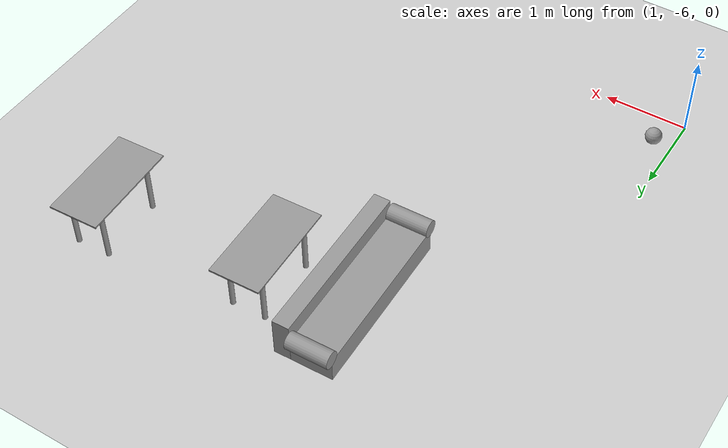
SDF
<sdf version="1.6">
 <world name="default">
  <model name="ground_plane">
   <static>1</static>
   <link name="link">
    <collision name="collision">
     <geometry><plane><normal>0 0 1</normal><size>100 100</size></plane></geometry>
     <surface>
      <contact><collide_bitmask>65535</collide_bitmask></contact>
      <friction><ode><mu>100</mu><mu2>50</mu2></ode></friction>
     </surface>
    </collision>
    <visual name="visual">
     <cast_shadows>0</cast_shadows>
     <geometry><plane><normal>0 0 1</normal><size>100 100</size></plane></geometry>
     <material>
      <script><uri>file://media/materials/scripts/gazebo.material</uri><name>Gazebo/Grey</name></script>
     </material>
    </visual>
   </link>
  </model>
  <model name="couch">
   <link name="link_2">
    <pose>0 -0.0875 -0.115 0 -0 0</pose>
    <inertial>
     <mass>1</mass>
     <inertia>
      <ixx>0.166667</ixx>
      <ixy>0</ixy>
      <ixz>0</ixz>
      <iyy>0.166667</iyy>
      <iyz>0</iyz>
      <izz>0.166667</izz>
     </inertia>
    </inertial>
    <visual name="visual">
     <geometry><box><size>2 0.5 0.3</size></box></geometry>
     <material>
      <lighting>1</lighting>
      <script><uri>file://media/materials/scripts/gazebo.material</uri><name>Gazebo/Grey</name></script>
      <shader type="pixel"><normal_map>__default__</normal_map></shader>
      <ambient>0.3 0.3 0.3 1</ambient>
      <diffuse>0.7 0.7 0.7 1</diffuse>
      <specular>0.01 0.01 0.01 1</specular>
      <emissive>0 0 0 1</emissive>
     </material>
    </visual>
    <collision name="collision">
     <geometry><box><size>2 0.5 0.3</size></box></geometry>
     <surface>
      <friction>
       <ode><mu>1</mu><mu2>1</mu2><fdir1>0 0 0</fdir1><slip1>0</slip1><slip2>0</slip2></ode>
       <torsional>
        <coefficient>1</coefficient>
        <patch_radius>0</patch_radius>
        <surface_radius>0</surface_radius>
        <use_patch_radius>1</use_patch_radius>
        <ode><slip>0</slip></ode>
       </torsional>
      </friction>
      <bounce><restitution_coefficient>0</restitution_coefficient><threshold>1e+06</threshold></bounce>
      <contact>
       <collide_without_contact>0</collide_without_contact>
       <collide_without_contact_bitmask>1</collide_without_contact_bitmask>
       <collide_bitmask>1</collide_bitmask>
       <ode>
        <soft_cfm>0</soft_cfm>
        <soft_erp>0.2</soft_erp>
        <kp>1e+13</kp>
        <kd>1</kd>
        <max_vel>0.01</max_vel>
        <min_depth>0</min_depth>
       </ode>
       <bullet>
        <split_impulse>1</split_impulse>
        <split_impulse_penetration_threshold>-0.01</split_impulse_penetration_threshold>
        <soft_cfm>0</soft_cfm>
        <soft_erp>0.2</soft_erp>
        <kp>1e+13</kp>
        <kd>1</kd>
       </bullet>
      </contact>
     </surface>
    </collision>
   </link>
   <link name="link_3">
    <pose>0 0.2625 -0.015 0 -0 0</pose>
    <inertial>
     <mass>1</mass>
     <inertia>
      <ixx>0.166667</ixx>
      <ixy>0</ixy>
      <ixz>0</ixz>
      <iyy>0.166667</iyy>
      <iyz>0</iyz>
      <izz>0.166667</izz>
     </inertia>
    </inertial>
    <visual name="visual">
     <geometry><box><size>2 0.2 0.5</size></box></geometry>
     <material>
      <lighting>1</lighting>
      <script><uri>file://media/materials/scripts/gazebo.material</uri><name>Gazebo/Grey</name></script>
      <shader type="pixel"><normal_map>__default__</normal_map></shader>
      <ambient>0.3 0.3 0.3 1</ambient>
      <diffuse>0.7 0.7 0.7 1</diffuse>
      <specular>0.01 0.01 0.01 1</specular>
      <emissive>0 0 0 1</emissive>
     </material>
    </visual>
    <collision name="collision">
     <geometry><box><size>2 0.2 0.5</size></box></geometry>
     <surface>
      <friction>
       <ode><mu>1</mu><mu2>1</mu2><fdir1>0 0 0</fdir1><slip1>0</slip1><slip2>0</slip2></ode>
       <torsional>
        <coefficient>1</coefficient>
        <patch_radius>0</patch_radius>
        <surface_radius>0</surface_radius>
        <use_patch_radius>1</use_patch_radius>
        <ode><slip>0</slip></ode>
       </torsional>
      </friction>
      <bounce><restitution_coefficient>0</restitution_coefficient><threshold>1e+06</threshold></bounce>
      <contact>
       <collide_without_contact>0</collide_without_contact>
       <collide_without_contact_bitmask>1</collide_without_contact_bitmask>
       <collide_bitmask>1</collide_bitmask>
       <ode>
        <soft_cfm>0</soft_cfm>
        <soft_erp>0.2</soft_erp>
        <kp>1e+13</kp>
        <kd>1</kd>
        <max_vel>0.01</max_vel>
        <min_depth>0</min_depth>
       </ode>
       <bullet>
        <split_impulse>1</split_impulse>
        <split_impulse_penetration_threshold>-0.01</split_impulse_penetration_threshold>
        <soft_cfm>0</soft_cfm>
        <soft_erp>0.2</soft_erp>
        <kp>1e+13</kp>
        <kd>1</kd>
       </bullet>
      </contact>
     </surface>
    </collision>
   </link>
   <link name="link_4">
    <pose>1 -0.0875 0.065 1.5707 -0 0</pose>
    <inertial>
     <mass>1</mass>
     <inertia><ixx>0.145833</ixx><ixy>0</ixy><ixz>0</ixz><iyy>0.145833</iyy><iyz>0</iyz><izz>0.125</izz></inertia>
    </inertial>
    <visual name="visual">
     <geometry><cylinder><radius>0.1</radius><length>0.5</length></cylinder></geometry>
     <material>
      <lighting>1</lighting>
      <script><uri>file://media/materials/scripts/gazebo.material</uri><name>Gazebo/Grey</name></script>
      <shader type="pixel"><normal_map>__default__</normal_map></shader>
      <ambient>0.3 0.3 0.3 1</ambient>
      <diffuse>0.7 0.7 0.7 1</diffuse>
      <specular>0.01 0.01 0.01 1</specular>
      <emissive>0 0 0 1</emissive>
     </material>
    </visual>
    <collision name="collision">
     <geometry><cylinder><radius>0.1</radius><length>0.5</length></cylinder></geometry>
     <surface>
      <friction>
       <ode><mu>1</mu><mu2>1</mu2><fdir1>0 0 0</fdir1><slip1>0</slip1><slip2>0</slip2></ode>
       <torsional>
        <coefficient>1</coefficient>
        <patch_radius>0</patch_radius>
        <surface_radius>0</surface_radius>
        <use_patch_radius>1</use_patch_radius>
        <ode><slip>0</slip></ode>
       </torsional>
      </friction>
      <bounce><restitution_coefficient>0</restitution_coefficient><threshold>1e+06</threshold></bounce>
      <contact>
       <collide_without_contact>0</collide_without_contact>
       <collide_without_contact_bitmask>1</collide_without_contact_bitmask>
       <collide_bitmask>1</collide_bitmask>
       <ode>
        <soft_cfm>0</soft_cfm>
        <soft_erp>0.2</soft_erp>
        <kp>1e+13</kp>
        <kd>1</kd>
        <max_vel>0.01</max_vel>
        <min_depth>0</min_depth>
       </ode>
       <bullet>
        <split_impulse>1</split_impulse>
        <split_impulse_penetration_threshold>-0.01</split_impulse_penetration_threshold>
        <soft_cfm>0</soft_cfm>
        <soft_erp>0.2</soft_erp>
        <kp>1e+13</kp>
        <kd>1</kd>
       </bullet>
      </contact>
     </surface>
    </collision>
   </link>
   <link name="link_4_clone">
    <pose>-1 -0.0875 0.065 1.5707 -0 0</pose>
    <inertial>
     <mass>1</mass>
     <inertia><ixx>0.145833</ixx><ixy>0</ixy><ixz>0</ixz><iyy>0.145833</iyy><iyz>0</iyz><izz>0.125</izz></inertia>
    </inertial>
    <visual name="visual">
     <geometry><cylinder><radius>0.1</radius><length>0.5</length></cylinder></geometry>
     <material>
      <lighting>1</lighting>
      <script><uri>file://media/materials/scripts/gazebo.material</uri><name>Gazebo/Grey</name></script>
      <shader type="pixel"><normal_map>__default__</normal_map></shader>
      <ambient>0.3 0.3 0.3 1</ambient>
      <diffuse>0.7 0.7 0.7 1</diffuse>
      <specular>0.01 0.01 0.01 1</specular>
      <emissive>0 0 0 1</emissive>
     </material>
    </visual>
    <collision name="collision">
     <geometry><cylinder><radius>0.1</radius><length>0.5</length></cylinder></geometry>
     <surface>
      <friction>
       <ode><mu>1</mu><mu2>1</mu2><fdir1>0 0 0</fdir1><slip1>0</slip1><slip2>0</slip2></ode>
       <torsional>
        <coefficient>1</coefficient>
        <patch_radius>0</patch_radius>
        <surface_radius>0</surface_radius>
        <use_patch_radius>1</use_patch_radius>
        <ode><slip>0</slip></ode>
       </torsional>
      </friction>
      <bounce><restitution_coefficient>0</restitution_coefficient><threshold>1e+06</threshold></bounce>
      <contact>
       <collide_without_contact>0</collide_without_contact>
       <collide_without_contact_bitmask>1</collide_without_contact_bitmask>
       <collide_bitmask>1</collide_bitmask>
       <ode>
        <soft_cfm>0</soft_cfm>
        <soft_erp>0.2</soft_erp>
        <kp>1e+13</kp>
        <kd>1</kd>
        <max_vel>0.01</max_vel>
        <min_depth>0</min_depth>
       </ode>
       <bullet>
        <split_impulse>1</split_impulse>
        <split_impulse_penetration_threshold>-0.01</split_impulse_penetration_threshold>
        <soft_cfm>0</soft_cfm>
        <soft_erp>0.2</soft_erp>
        <kp>1e+13</kp>
        <kd>1</kd>
       </bullet>
      </contact>
     </surface>
    </collision>
   </link>
   <joint name="link_2_JOINT_4" type="fixed">
    <parent>link_2</parent>
    <child>link_4_clone</child>
    <physics>
     <ode><limit><cfm>0</cfm><erp>0.2</erp></limit><suspension><cfm>0</cfm><erp>0.2</erp></suspension></ode>
    </physics>
   </joint>
   <joint name="link_2_JOINT_6" type="fixed">
    <parent>link_2</parent>
    <child>link_3</child>
    <physics>
     <ode><limit><cfm>0</cfm><erp>0.2</erp></limit><suspension><cfm>0</cfm><erp>0.2</erp></suspension></ode>
    </physics>
   </joint>
   <joint name="link_2_JOINT_7" type="fixed">
    <parent>link_2</parent>
    <child>link_4</child>
    <physics>
     <ode><limit><cfm>0</cfm><erp>0.2</erp></limit><suspension><cfm>0</cfm><erp>0.2</erp></suspension></ode>
    </physics>
   </joint>
   <static>0</static>
   <pose>2.90486 -1.80166 0.265 1e-06 0 -1.54634</pose>
  </model>
  <model name="desk_0">
   <link name="link_0">
    <pose>-0.4 -0.2 -0.068 0 -0 0</pose>
    <inertial>
     <mass>1</mass>
     <inertia><ixx>0.145833</ixx><ixy>0</ixy><ixz>0</ixz><iyy>0.145833</iyy><iyz>0</iyz><izz>0.125</izz></inertia>
    </inertial>
    <visual name="visual">
     <geometry><cylinder><radius>0.03</radius><length>0.67</length></cylinder></geometry>
     <material>
      <lighting>1</lighting>
      <script><uri>file://media/materials/scripts/gazebo.material</uri><name>Gazebo/Grey</name></script>
      <shader type="pixel"><normal_map>__default__</normal_map></shader>
      <ambient>0.3 0.3 0.3 1</ambient>
      <diffuse>0.7 0.7 0.7 1</diffuse>
      <specular>0.01 0.01 0.01 1</specular>
      <emissive>0 0 0 1</emissive>
     </material>
    </visual>
    <collision name="collision">
     <geometry><cylinder><radius>0.03</radius><length>0.67</length></cylinder></geometry>
     <surface>
      <friction>
       <ode><mu>1</mu><mu2>1</mu2><fdir1>0 0 0</fdir1><slip1>0</slip1><slip2>0</slip2></ode>
       <torsional>
        <coefficient>1</coefficient>
        <patch_radius>0</patch_radius>
        <surface_radius>0</surface_radius>
        <use_patch_radius>1</use_patch_radius>
        <ode><slip>0</slip></ode>
       </torsional>
      </friction>
      <bounce><restitution_coefficient>0</restitution_coefficient><threshold>1e+06</threshold></bounce>
      <contact>
       <collide_without_contact>0</collide_without_contact>
       <collide_without_contact_bitmask>1</collide_without_contact_bitmask>
       <collide_bitmask>1</collide_bitmask>
       <ode>
        <soft_cfm>0</soft_cfm>
        <soft_erp>0.2</soft_erp>
        <kp>1e+13</kp>
        <kd>1</kd>
        <max_vel>0.01</max_vel>
        <min_depth>0</min_depth>
       </ode>
       <bullet>
        <split_impulse>1</split_impulse>
        <split_impulse_penetration_threshold>-0.01</split_impulse_penetration_threshold>
        <soft_cfm>0</soft_cfm>
        <soft_erp>0.2</soft_erp>
        <kp>1e+13</kp>
        <kd>1</kd>
       </bullet>
      </contact>
     </surface>
    </collision>
   </link>
   <link name="link_0_clone">
    <pose>-0.4 0.2 -0.068 0 -0 0</pose>
    <inertial>
     <mass>1</mass>
     <inertia><ixx>0.145833</ixx><ixy>0</ixy><ixz>0</ixz><iyy>0.145833</iyy><iyz>0</iyz><izz>0.125</izz></inertia>
    </inertial>
    <visual name="visual">
     <geometry><cylinder><radius>0.03</radius><length>0.67</length></cylinder></geometry>
     <material>
      <lighting>1</lighting>
      <script><uri>file://media/materials/scripts/gazebo.material</uri><name>Gazebo/Grey</name></script>
      <shader type="pixel"><normal_map>__default__</normal_map></shader>
      <ambient>0.3 0.3 0.3 1</ambient>
      <diffuse>0.7 0.7 0.7 1</diffuse>
      <specular>0.01 0.01 0.01 1</specular>
      <emissive>0 0 0 1</emissive>
     </material>
    </visual>
    <collision name="collision">
     <geometry><cylinder><radius>0.03</radius><length>0.67</length></cylinder></geometry>
     <surface>
      <friction>
       <ode><mu>1</mu><mu2>1</mu2><fdir1>0 0 0</fdir1><slip1>0</slip1><slip2>0</slip2></ode>
       <torsional>
        <coefficient>1</coefficient>
        <patch_radius>0</patch_radius>
        <surface_radius>0</surface_radius>
        <use_patch_radius>1</use_patch_radius>
        <ode><slip>0</slip></ode>
       </torsional>
      </friction>
      <bounce><restitution_coefficient>0</restitution_coefficient><threshold>1e+06</threshold></bounce>
      <contact>
       <collide_without_contact>0</collide_without_contact>
       <collide_without_contact_bitmask>1</collide_without_contact_bitmask>
       <collide_bitmask>1</collide_bitmask>
       <ode>
        <soft_cfm>0</soft_cfm>
        <soft_erp>0.2</soft_erp>
        <kp>1e+13</kp>
        <kd>1</kd>
        <max_vel>0.01</max_vel>
        <min_depth>0</min_depth>
       </ode>
       <bullet>
        <split_impulse>1</split_impulse>
        <split_impulse_penetration_threshold>-0.01</split_impulse_penetration_threshold>
        <soft_cfm>0</soft_cfm>
        <soft_erp>0.2</soft_erp>
        <kp>1e+13</kp>
        <kd>1</kd>
       </bullet>
      </contact>
     </surface>
    </collision>
   </link>
   <link name="link_0_clone_0">
    <pose>0.4 0.2 -0.068 0 -0 0</pose>
    <inertial>
     <mass>1</mass>
     <inertia><ixx>0.145833</ixx><ixy>0</ixy><ixz>0</ixz><iyy>0.145833</iyy><iyz>0</iyz><izz>0.125</izz></inertia>
    </inertial>
    <visual name="visual">
     <geometry><cylinder><radius>0.03</radius><length>0.67</length></cylinder></geometry>
     <material>
      <lighting>1</lighting>
      <script><uri>file://media/materials/scripts/gazebo.material</uri><name>Gazebo/Grey</name></script>
      <shader type="pixel"><normal_map>__default__</normal_map></shader>
      <ambient>0.3 0.3 0.3 1</ambient>
      <diffuse>0.7 0.7 0.7 1</diffuse>
      <specular>0.01 0.01 0.01 1</specular>
      <emissive>0 0 0 1</emissive>
     </material>
    </visual>
    <collision name="collision">
     <geometry><cylinder><radius>0.03</radius><length>0.67</length></cylinder></geometry>
     <surface>
      <friction>
       <ode><mu>1</mu><mu2>1</mu2><fdir1>0 0 0</fdir1><slip1>0</slip1><slip2>0</slip2></ode>
       <torsional>
        <coefficient>1</coefficient>
        <patch_radius>0</patch_radius>
        <surface_radius>0</surface_radius>
        <use_patch_radius>1</use_patch_radius>
        <ode><slip>0</slip></ode>
       </torsional>
      </friction>
      <bounce><restitution_coefficient>0</restitution_coefficient><threshold>1e+06</threshold></bounce>
      <contact>
       <collide_without_contact>0</collide_without_contact>
       <collide_without_contact_bitmask>1</collide_without_contact_bitmask>
       <collide_bitmask>1</collide_bitmask>
       <ode>
        <soft_cfm>0</soft_cfm>
        <soft_erp>0.2</soft_erp>
        <kp>1e+13</kp>
        <kd>1</kd>
        <max_vel>0.01</max_vel>
        <min_depth>0</min_depth>
       </ode>
       <bullet>
        <split_impulse>1</split_impulse>
        <split_impulse_penetration_threshold>-0.01</split_impulse_penetration_threshold>
        <soft_cfm>0</soft_cfm>
        <soft_erp>0.2</soft_erp>
        <kp>1e+13</kp>
        <kd>1</kd>
       </bullet>
      </contact>
     </surface>
    </collision>
   </link>
   <link name="link_0_clone_1">
    <pose>0.4 -0.2 -0.068 0 -0 0</pose>
    <inertial>
     <mass>1</mass>
     <inertia><ixx>0.145833</ixx><ixy>0</ixy><ixz>0</ixz><iyy>0.145833</iyy><iyz>0</iyz><izz>0.125</izz></inertia>
    </inertial>
    <visual name="visual">
     <geometry><cylinder><radius>0.03</radius><length>0.67</length></cylinder></geometry>
     <material>
      <lighting>1</lighting>
      <script><uri>file://media/materials/scripts/gazebo.material</uri><name>Gazebo/Grey</name></script>
      <shader type="pixel"><normal_map>__default__</normal_map></shader>
      <ambient>0.3 0.3 0.3 1</ambient>
      <diffuse>0.7 0.7 0.7 1</diffuse>
      <specular>0.01 0.01 0.01 1</specular>
      <emissive>0 0 0 1</emissive>
     </material>
    </visual>
    <collision name="collision">
     <geometry><cylinder><radius>0.03</radius><length>0.67</length></cylinder></geometry>
     <surface>
      <friction>
       <ode><mu>1</mu><mu2>1</mu2><fdir1>0 0 0</fdir1><slip1>0</slip1><slip2>0</slip2></ode>
       <torsional>
        <coefficient>1</coefficient>
        <patch_radius>0</patch_radius>
        <surface_radius>0</surface_radius>
        <use_patch_radius>1</use_patch_radius>
        <ode><slip>0</slip></ode>
       </torsional>
      </friction>
      <bounce><restitution_coefficient>0</restitution_coefficient><threshold>1e+06</threshold></bounce>
      <contact>
       <collide_without_contact>0</collide_without_contact>
       <collide_without_contact_bitmask>1</collide_without_contact_bitmask>
       <collide_bitmask>1</collide_bitmask>
       <ode>
        <soft_cfm>0</soft_cfm>
        <soft_erp>0.2</soft_erp>
        <kp>1e+13</kp>
        <kd>1</kd>
        <max_vel>0.01</max_vel>
        <min_depth>0</min_depth>
       </ode>
       <bullet>
        <split_impulse>1</split_impulse>
        <split_impulse_penetration_threshold>-0.01</split_impulse_penetration_threshold>
        <soft_cfm>0</soft_cfm>
        <soft_erp>0.2</soft_erp>
        <kp>1e+13</kp>
        <kd>1</kd>
       </bullet>
      </contact>
     </surface>
    </collision>
   </link>
   <link name="link_1">
    <pose>0 0 0.272 0 -0 0</pose>
    <inertial>
     <mass>1</mass>
     <inertia>
      <ixx>0.166667</ixx>
      <ixy>0</ixy>
      <ixz>0</ixz>
      <iyy>0.166667</iyy>
      <iyz>0</iyz>
      <izz>0.166667</izz>
     </inertia>
    </inertial>
    <visual name="visual">
     <geometry><box><size>1.2 0.6 0.02</size></box></geometry>
     <material>
      <lighting>1</lighting>
      <script><uri>file://media/materials/scripts/gazebo.material</uri><name>Gazebo/Grey</name></script>
      <shader type="pixel"><normal_map>__default__</normal_map></shader>
      <ambient>0.3 0.3 0.3 1</ambient>
      <diffuse>0.7 0.7 0.7 1</diffuse>
      <specular>0.01 0.01 0.01 1</specular>
      <emissive>0 0 0 1</emissive>
     </material>
    </visual>
    <collision name="collision">
     <geometry><box><size>1.2 0.6 0.02</size></box></geometry>
     <surface>
      <friction>
       <ode><mu>1</mu><mu2>1</mu2><fdir1>0 0 0</fdir1><slip1>0</slip1><slip2>0</slip2></ode>
       <torsional>
        <coefficient>1</coefficient>
        <patch_radius>0</patch_radius>
        <surface_radius>0</surface_radius>
        <use_patch_radius>1</use_patch_radius>
        <ode><slip>0</slip></ode>
       </torsional>
      </friction>
      <bounce><restitution_coefficient>0</restitution_coefficient><threshold>1e+06</threshold></bounce>
      <contact>
       <collide_without_contact>0</collide_without_contact>
       <collide_without_contact_bitmask>1</collide_without_contact_bitmask>
       <collide_bitmask>1</collide_bitmask>
       <ode>
        <soft_cfm>0</soft_cfm>
        <soft_erp>0.2</soft_erp>
        <kp>1e+13</kp>
        <kd>1</kd>
        <max_vel>0.01</max_vel>
        <min_depth>0</min_depth>
       </ode>
       <bullet>
        <split_impulse>1</split_impulse>
        <split_impulse_penetration_threshold>-0.01</split_impulse_penetration_threshold>
        <soft_cfm>0</soft_cfm>
        <soft_erp>0.2</soft_erp>
        <kp>1e+13</kp>
        <kd>1</kd>
       </bullet>
      </contact>
     </surface>
    </collision>
   </link>
   <joint name="link_1_JOINT_0" type="fixed">
    <parent>link_1</parent>
    <child>link_0</child>
    <physics>
     <ode><limit><cfm>0</cfm><erp>0.2</erp></limit><suspension><cfm>0</cfm><erp>0.2</erp></suspension></ode>
    </physics>
   </joint>
   <joint name="link_1_JOINT_1" type="fixed">
    <parent>link_1</parent>
    <child>link_0_clone</child>
    <physics>
     <ode><limit><cfm>0</cfm><erp>0.2</erp></limit><suspension><cfm>0</cfm><erp>0.2</erp></suspension></ode>
    </physics>
   </joint>
   <joint name="link_1_JOINT_2" type="fixed">
    <parent>link_1</parent>
    <child>link_0_clone_0</child>
    <physics>
     <ode><limit><cfm>0</cfm><erp>0.2</erp></limit><suspension><cfm>0</cfm><erp>0.2</erp></suspension></ode>
    </physics>
   </joint>
   <joint name="link_1_JOINT_3" type="fixed">
    <parent>link_1</parent>
    <child>link_0_clone_1</child>
    <physics>
     <ode><limit><cfm>0</cfm><erp>0.2</erp></limit><suspension><cfm>0</cfm><erp>0.2</erp></suspension></ode>
    </physics>
   </joint>
   <static>0</static>
   <pose>5.72025 -1.30518 0.402999 0 3e-06 -1.53127</pose>
  </model>
  <model name="desk">
   <link name="link_0">
    <pose>-0.4 -0.2 -0.068 0 -0 0</pose>
    <inertial>
     <mass>1</mass>
     <inertia><ixx>0.145833</ixx><ixy>0</ixy><ixz>0</ixz><iyy>0.145833</iyy><iyz>0</iyz><izz>0.125</izz></inertia>
    </inertial>
    <visual name="visual">
     <geometry><cylinder><radius>0.03</radius><length>0.67</length></cylinder></geometry>
     <material>
      <lighting>1</lighting>
      <script><uri>file://media/materials/scripts/gazebo.material</uri><name>Gazebo/Grey</name></script>
      <shader type="pixel"><normal_map>__default__</normal_map></shader>
      <ambient>0.3 0.3 0.3 1</ambient>
      <diffuse>0.7 0.7 0.7 1</diffuse>
      <specular>0.01 0.01 0.01 1</specular>
      <emissive>0 0 0 1</emissive>
     </material>
    </visual>
    <collision name="collision">
     <geometry><cylinder><radius>0.03</radius><length>0.67</length></cylinder></geometry>
     <surface>
      <friction>
       <ode><mu>1</mu><mu2>1</mu2><fdir1>0 0 0</fdir1><slip1>0</slip1><slip2>0</slip2></ode>
       <torsional>
        <coefficient>1</coefficient>
        <patch_radius>0</patch_radius>
        <surface_radius>0</surface_radius>
        <use_patch_radius>1</use_patch_radius>
        <ode><slip>0</slip></ode>
       </torsional>
      </friction>
      <bounce><restitution_coefficient>0</restitution_coefficient><threshold>1e+06</threshold></bounce>
      <contact>
       <collide_without_contact>0</collide_without_contact>
       <collide_without_contact_bitmask>1</collide_without_contact_bitmask>
       <collide_bitmask>1</collide_bitmask>
       <ode>
        <soft_cfm>0</soft_cfm>
        <soft_erp>0.2</soft_erp>
        <kp>1e+13</kp>
        <kd>1</kd>
        <max_vel>0.01</max_vel>
        <min_depth>0</min_depth>
       </ode>
       <bullet>
        <split_impulse>1</split_impulse>
        <split_impulse_penetration_threshold>-0.01</split_impulse_penetration_threshold>
        <soft_cfm>0</soft_cfm>
        <soft_erp>0.2</soft_erp>
        <kp>1e+13</kp>
        <kd>1</kd>
       </bullet>
      </contact>
     </surface>
    </collision>
   </link>
   <link name="link_0_clone">
    <pose>-0.4 0.2 -0.068 0 -0 0</pose>
    <inertial>
     <mass>1</mass>
     <inertia><ixx>0.145833</ixx><ixy>0</ixy><ixz>0</ixz><iyy>0.145833</iyy><iyz>0</iyz><izz>0.125</izz></inertia>
    </inertial>
    <visual name="visual">
     <geometry><cylinder><radius>0.03</radius><length>0.67</length></cylinder></geometry>
     <material>
      <lighting>1</lighting>
      <script><uri>file://media/materials/scripts/gazebo.material</uri><name>Gazebo/Grey</name></script>
      <shader type="pixel"><normal_map>__default__</normal_map></shader>
      <ambient>0.3 0.3 0.3 1</ambient>
      <diffuse>0.7 0.7 0.7 1</diffuse>
      <specular>0.01 0.01 0.01 1</specular>
      <emissive>0 0 0 1</emissive>
     </material>
    </visual>
    <collision name="collision">
     <geometry><cylinder><radius>0.03</radius><length>0.67</length></cylinder></geometry>
     <surface>
      <friction>
       <ode><mu>1</mu><mu2>1</mu2><fdir1>0 0 0</fdir1><slip1>0</slip1><slip2>0</slip2></ode>
       <torsional>
        <coefficient>1</coefficient>
        <patch_radius>0</patch_radius>
        <surface_radius>0</surface_radius>
        <use_patch_radius>1</use_patch_radius>
        <ode><slip>0</slip></ode>
       </torsional>
      </friction>
      <bounce><restitution_coefficient>0</restitution_coefficient><threshold>1e+06</threshold></bounce>
      <contact>
       <collide_without_contact>0</collide_without_contact>
       <collide_without_contact_bitmask>1</collide_without_contact_bitmask>
       <collide_bitmask>1</collide_bitmask>
       <ode>
        <soft_cfm>0</soft_cfm>
        <soft_erp>0.2</soft_erp>
        <kp>1e+13</kp>
        <kd>1</kd>
        <max_vel>0.01</max_vel>
        <min_depth>0</min_depth>
       </ode>
       <bullet>
        <split_impulse>1</split_impulse>
        <split_impulse_penetration_threshold>-0.01</split_impulse_penetration_threshold>
        <soft_cfm>0</soft_cfm>
        <soft_erp>0.2</soft_erp>
        <kp>1e+13</kp>
        <kd>1</kd>
       </bullet>
      </contact>
     </surface>
    </collision>
   </link>
   <link name="link_0_clone_0">
    <pose>0.4 0.2 -0.068 0 -0 0</pose>
    <inertial>
     <mass>1</mass>
     <inertia><ixx>0.145833</ixx><ixy>0</ixy><ixz>0</ixz><iyy>0.145833</iyy><iyz>0</iyz><izz>0.125</izz></inertia>
    </inertial>
    <visual name="visual">
     <geometry><cylinder><radius>0.03</radius><length>0.67</length></cylinder></geometry>
     <material>
      <lighting>1</lighting>
      <script><uri>file://media/materials/scripts/gazebo.material</uri><name>Gazebo/Grey</name></script>
      <shader type="pixel"><normal_map>__default__</normal_map></shader>
      <ambient>0.3 0.3 0.3 1</ambient>
      <diffuse>0.7 0.7 0.7 1</diffuse>
      <specular>0.01 0.01 0.01 1</specular>
      <emissive>0 0 0 1</emissive>
     </material>
    </visual>
    <collision name="collision">
     <geometry><cylinder><radius>0.03</radius><length>0.67</length></cylinder></geometry>
     <surface>
      <friction>
       <ode><mu>1</mu><mu2>1</mu2><fdir1>0 0 0</fdir1><slip1>0</slip1><slip2>0</slip2></ode>
       <torsional>
        <coefficient>1</coefficient>
        <patch_radius>0</patch_radius>
        <surface_radius>0</surface_radius>
        <use_patch_radius>1</use_patch_radius>
        <ode><slip>0</slip></ode>
       </torsional>
      </friction>
      <bounce><restitution_coefficient>0</restitution_coefficient><threshold>1e+06</threshold></bounce>
      <contact>
       <collide_without_contact>0</collide_without_contact>
       <collide_without_contact_bitmask>1</collide_without_contact_bitmask>
       <collide_bitmask>1</collide_bitmask>
       <ode>
        <soft_cfm>0</soft_cfm>
        <soft_erp>0.2</soft_erp>
        <kp>1e+13</kp>
        <kd>1</kd>
        <max_vel>0.01</max_vel>
        <min_depth>0</min_depth>
       </ode>
       <bullet>
        <split_impulse>1</split_impulse>
        <split_impulse_penetration_threshold>-0.01</split_impulse_penetration_threshold>
        <soft_cfm>0</soft_cfm>
        <soft_erp>0.2</soft_erp>
        <kp>1e+13</kp>
        <kd>1</kd>
       </bullet>
      </contact>
     </surface>
    </collision>
   </link>
   <link name="link_0_clone_1">
    <pose>0.4 -0.2 -0.068 0 -0 0</pose>
    <inertial>
     <mass>1</mass>
     <inertia><ixx>0.145833</ixx><ixy>0</ixy><ixz>0</ixz><iyy>0.145833</iyy><iyz>0</iyz><izz>0.125</izz></inertia>
    </inertial>
    <visual name="visual">
     <geometry><cylinder><radius>0.03</radius><length>0.67</length></cylinder></geometry>
     <material>
      <lighting>1</lighting>
      <script><uri>file://media/materials/scripts/gazebo.material</uri><name>Gazebo/Grey</name></script>
      <shader type="pixel"><normal_map>__default__</normal_map></shader>
      <ambient>0.3 0.3 0.3 1</ambient>
      <diffuse>0.7 0.7 0.7 1</diffuse>
      <specular>0.01 0.01 0.01 1</specular>
      <emissive>0 0 0 1</emissive>
     </material>
    </visual>
    <collision name="collision">
     <geometry><cylinder><radius>0.03</radius><length>0.67</length></cylinder></geometry>
     <surface>
      <friction>
       <ode><mu>1</mu><mu2>1</mu2><fdir1>0 0 0</fdir1><slip1>0</slip1><slip2>0</slip2></ode>
       <torsional>
        <coefficient>1</coefficient>
        <patch_radius>0</patch_radius>
        <surface_radius>0</surface_radius>
        <use_patch_radius>1</use_patch_radius>
        <ode><slip>0</slip></ode>
       </torsional>
      </friction>
      <bounce><restitution_coefficient>0</restitution_coefficient><threshold>1e+06</threshold></bounce>
      <contact>
       <collide_without_contact>0</collide_without_contact>
       <collide_without_contact_bitmask>1</collide_without_contact_bitmask>
       <collide_bitmask>1</collide_bitmask>
       <ode>
        <soft_cfm>0</soft_cfm>
        <soft_erp>0.2</soft_erp>
        <kp>1e+13</kp>
        <kd>1</kd>
        <max_vel>0.01</max_vel>
        <min_depth>0</min_depth>
       </ode>
       <bullet>
        <split_impulse>1</split_impulse>
        <split_impulse_penetration_threshold>-0.01</split_impulse_penetration_threshold>
        <soft_cfm>0</soft_cfm>
        <soft_erp>0.2</soft_erp>
        <kp>1e+13</kp>
        <kd>1</kd>
       </bullet>
      </contact>
     </surface>
    </collision>
   </link>
   <link name="link_1">
    <pose>0 0 0.272 0 -0 0</pose>
    <inertial>
     <mass>1</mass>
     <inertia>
      <ixx>0.166667</ixx>
      <ixy>0</ixy>
      <ixz>0</ixz>
      <iyy>0.166667</iyy>
      <iyz>0</iyz>
      <izz>0.166667</izz>
     </inertia>
    </inertial>
    <visual name="visual">
     <geometry><box><size>1.2 0.6 0.02</size></box></geometry>
     <material>
      <lighting>1</lighting>
      <script><uri>file://media/materials/scripts/gazebo.material</uri><name>Gazebo/Grey</name></script>
      <shader type="pixel"><normal_map>__default__</normal_map></shader>
      <ambient>0.3 0.3 0.3 1</ambient>
      <diffuse>0.7 0.7 0.7 1</diffuse>
      <specular>0.01 0.01 0.01 1</specular>
      <emissive>0 0 0 1</emissive>
     </material>
    </visual>
    <collision name="collision">
     <geometry><box><size>1.2 0.6 0.02</size></box></geometry>
     <surface>
      <friction>
       <ode><mu>1</mu><mu2>1</mu2><fdir1>0 0 0</fdir1><slip1>0</slip1><slip2>0</slip2></ode>
       <torsional>
        <coefficient>1</coefficient>
        <patch_radius>0</patch_radius>
        <surface_radius>0</surface_radius>
        <use_patch_radius>1</use_patch_radius>
        <ode><slip>0</slip></ode>
       </torsional>
      </friction>
      <bounce><restitution_coefficient>0</restitution_coefficient><threshold>1e+06</threshold></bounce>
      <contact>
       <collide_without_contact>0</collide_without_contact>
       <collide_without_contact_bitmask>1</collide_without_contact_bitmask>
       <collide_bitmask>1</collide_bitmask>
       <ode>
        <soft_cfm>0</soft_cfm>
        <soft_erp>0.2</soft_erp>
        <kp>1e+13</kp>
        <kd>1</kd>
        <max_vel>0.01</max_vel>
        <min_depth>0</min_depth>
       </ode>
       <bullet>
        <split_impulse>1</split_impulse>
        <split_impulse_penetration_threshold>-0.01</split_impulse_penetration_threshold>
        <soft_cfm>0</soft_cfm>
        <soft_erp>0.2</soft_erp>
        <kp>1e+13</kp>
        <kd>1</kd>
       </bullet>
      </contact>
     </surface>
    </collision>
   </link>
   <joint name="link_1_JOINT_0" type="fixed">
    <parent>link_1</parent>
    <child>link_0</child>
    <physics>
     <ode><limit><cfm>0</cfm><erp>0.2</erp></limit><suspension><cfm>0</cfm><erp>0.2</erp></suspension></ode>
    </physics>
   </joint>
   <joint name="link_1_JOINT_1" type="fixed">
    <parent>link_1</parent>
    <child>link_0_clone</child>
    <physics>
     <ode><limit><cfm>0</cfm><erp>0.2</erp></limit><suspension><cfm>0</cfm><erp>0.2</erp></suspension></ode>
    </physics>
   </joint>
   <joint name="link_1_JOINT_2" type="fixed">
    <parent>link_1</parent>
    <child>link_0_clone_0</child>
    <physics>
     <ode><limit><cfm>0</cfm><erp>0.2</erp></limit><suspension><cfm>0</cfm><erp>0.2</erp></suspension></ode>
    </physics>
   </joint>
   <joint name="link_1_JOINT_3" type="fixed">
    <parent>link_1</parent>
    <child>link_0_clone_1</child>
    <physics>
     <ode><limit><cfm>0</cfm><erp>0.2</erp></limit><suspension><cfm>0</cfm><erp>0.2</erp></suspension></ode>
    </physics>
   </joint>
   <static>0</static>
   <pose>3.78621 -1.49122 0.402999 -1e-06 -3e-06 -1.53556</pose>
  </model>
  <model name="my_ball">
   <link name="link_0">
    <inertial>
     <mass>1</mass>
     <inertia><ixx>0.1</ixx><ixy>0</ixy><ixz>0</ixz><iyy>0.1</iyy><iyz>0</iyz><izz>0.1</izz></inertia>
    </inertial>
    <visual name="visual">
     <geometry><sphere><radius>0.1</radius></sphere></geometry>
     <material>
      <lighting>1</lighting>
      <script><uri>file://media/materials/scripts/gazebo.material</uri><name>Gazebo/Grey</name></script>
      <shader type="pixel"><normal_map>__default__</normal_map></shader>
      <ambient>1 1 1 1</ambient>
      <diffuse>1 1 1 1</diffuse>
      <specular>1 1 1 1</specular>
      <emissive>1 1 1 1</emissive>
     </material>
    </visual>
    <collision name="collision">
     <geometry><sphere><radius>0.1</radius></sphere></geometry>
     <surface>
      <friction>
       <ode><mu>1</mu><mu2>1</mu2><fdir1>0 0 0</fdir1><slip1>0</slip1><slip2>0</slip2></ode>
       <torsional>
        <coefficient>1</coefficient>
        <patch_radius>0</patch_radius>
        <surface_radius>0</surface_radius>
        <use_patch_radius>1</use_patch_radius>
        <ode><slip>0</slip></ode>
       </torsional>
      </friction>
      <bounce><restitution_coefficient>0</restitution_coefficient><threshold>1e+06</threshold></bounce>
      <contact>
       <collide_without_contact>0</collide_without_contact>
       <collide_without_contact_bitmask>1</collide_without_contact_bitmask>
       <collide_bitmask>1</collide_bitmask>
       <ode>
        <soft_cfm>0</soft_cfm>
        <soft_erp>0.2</soft_erp>
        <kp>1e+13</kp>
        <kd>1</kd>
        <max_vel>0.01</max_vel>
        <min_depth>0</min_depth>
       </ode>
       <bullet>
        <split_impulse>1</split_impulse>
        <split_impulse_penetration_threshold>-0.01</split_impulse_penetration_threshold>
        <soft_cfm>0</soft_cfm>
        <soft_erp>0.2</soft_erp>
        <kp>1e+13</kp>
        <kd>1</kd>
       </bullet>
      </contact>
     </surface>
    </collision>
   </link>
   <static>0</static>
   <pose>1.22906 -5.59218 0.1 0 -0 0</pose>
  </model>
 </world>
</sdf>
